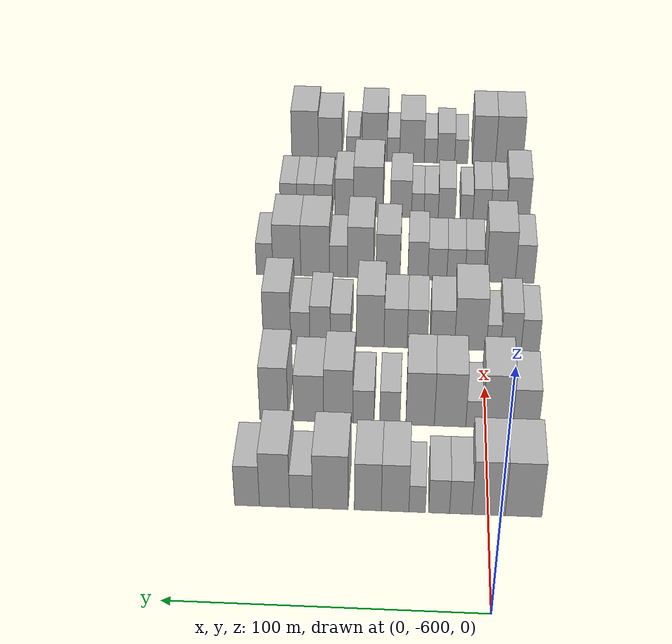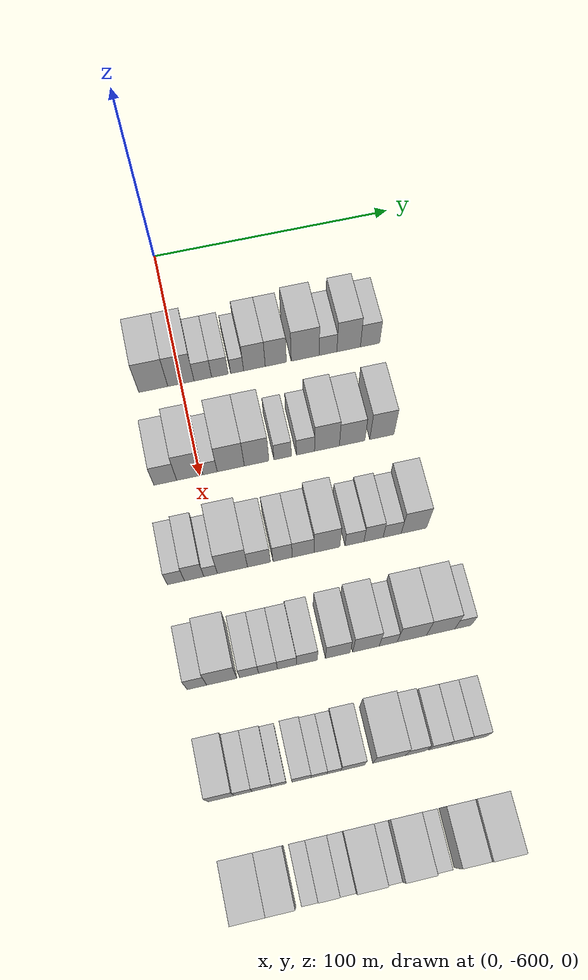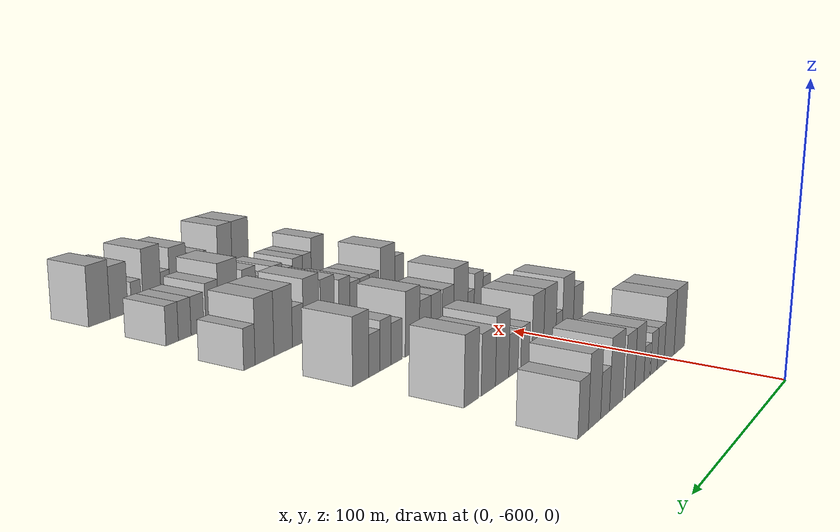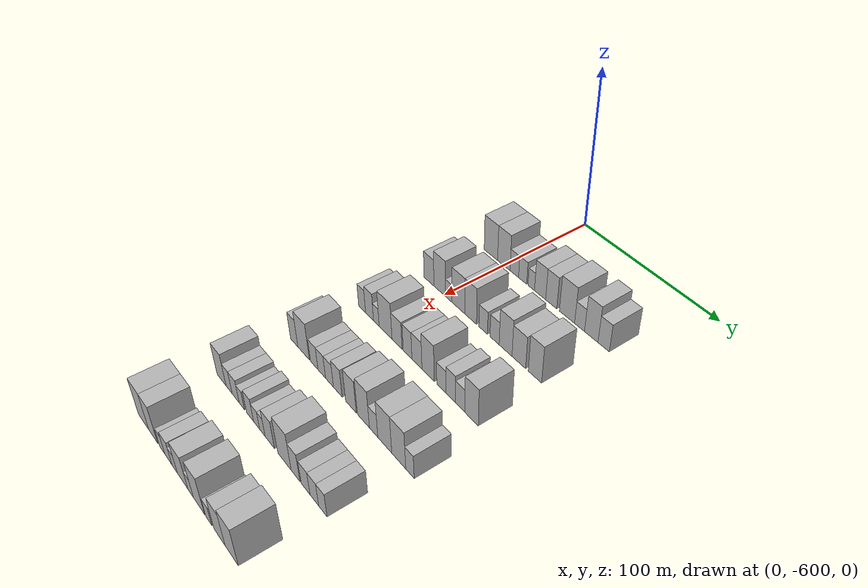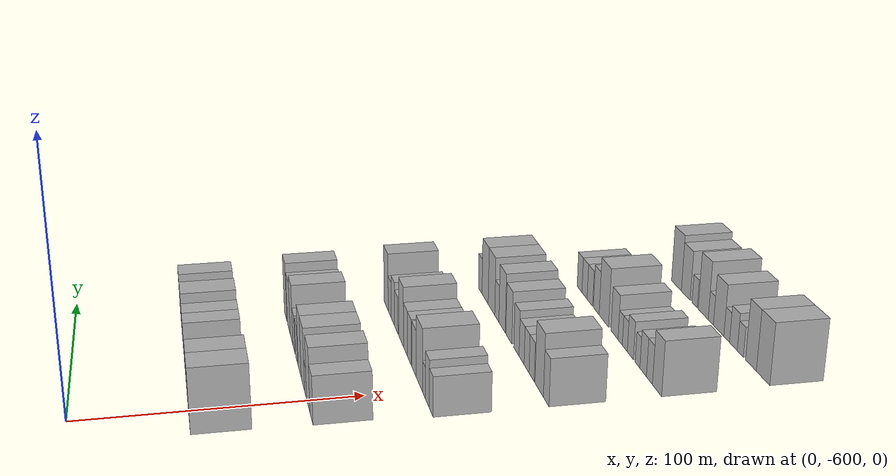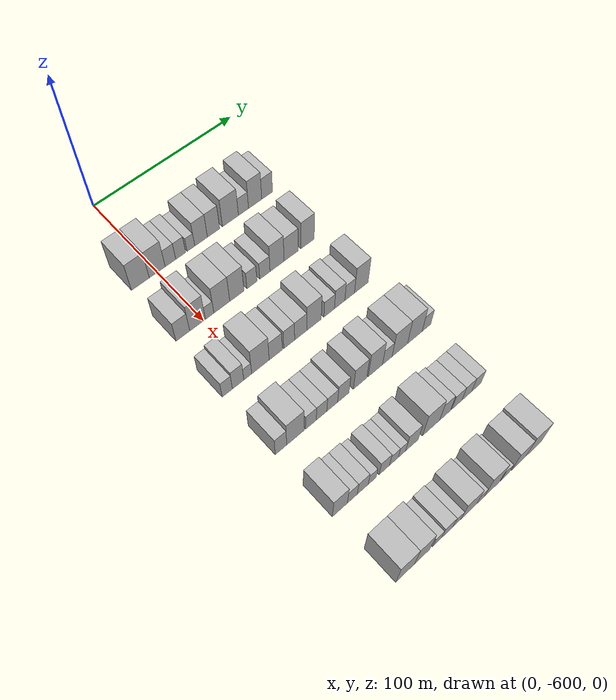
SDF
<sdf version="1.6">
 <world name="default">
  <model name="building_1">
   <static>1</static>
   <pose>50.0000 -611.1319 0 0.000000 0.000000 0.000000</pose>
   <link name="link">
    <pose>0 0 12.00 0 0 0</pose>
    <collision name="collision"><geometry><box><size>20.0000 11.7361 24.0000</size></box></geometry></collision>
    <visual name="visual">
     <cast_shadows>0</cast_shadows>
     <geometry><box><size>20.0000 11.7361 24.0000</size></box></geometry>
     <material>
      <script>
       <uri>model://HANNAS_wall/materials/scripts</uri>
       <uri>model://HANNAS_wall/materials/textures</uri>
       <name>vrc/HANNAS_wall</name>
      </script>
     </material>
    </visual>
   </link>
  </model>
  <model name="building_2">
   <static>1</static>
   <pose>50.0000 -599.9352 0 0.000000 0.000000 0.000000</pose>
   <link name="link">
    <pose>0 0 12.00 0 0 0</pose>
    <collision name="collision"><geometry><box><size>20.0000 10.6574 24.0000</size></box></geometry></collision>
    <visual name="visual">
     <cast_shadows>0</cast_shadows>
     <geometry><box><size>20.0000 10.6574 24.0000</size></box></geometry>
     <material>
      <script>
       <uri>model://HANNAS_wall/materials/scripts</uri>
       <uri>model://HANNAS_wall/materials/textures</uri>
       <name>vrc/HANNAS_wall</name>
      </script>
     </material>
    </visual>
   </link>
  </model>
  <model name="building_3">
   <static>1</static>
   <pose>50.0000 -591.0294 0 0.000000 0.000000 0.000000</pose>
   <link name="link">
    <pose>0 0 7.50 0 0 0</pose>
    <collision name="collision"><geometry><box><size>20.0000 7.1543 15.0000</size></box></geometry></collision>
    <visual name="visual">
     <cast_shadows>0</cast_shadows>
     <geometry><box><size>20.0000 7.1543 15.0000</size></box></geometry>
     <material>
      <script>
       <uri>model://HANNAS_wall/materials/scripts</uri>
       <uri>model://HANNAS_wall/materials/textures</uri>
       <name>vrc/HANNAS_wall</name>
      </script>
     </material>
    </visual>
   </link>
  </model>
  <model name="building_4">
   <static>1</static>
   <pose>50.0000 -584.0759 0 0.000000 0.000000 0.000000</pose>
   <link name="link">
    <pose>0 0 7.50 0 0 0</pose>
    <collision name="collision"><geometry><box><size>20.0000 6.7527 15.0000</size></box></geometry></collision>
    <visual name="visual">
     <cast_shadows>0</cast_shadows>
     <geometry><box><size>20.0000 6.7527 15.0000</size></box></geometry>
     <material>
      <script>
       <uri>model://HANNAS_wall/materials/scripts</uri>
       <uri>model://HANNAS_wall/materials/textures</uri>
       <name>vrc/HANNAS_wall</name>
      </script>
     </material>
    </visual>
   </link>
  </model>
  <model name="building_5">
   <static>1</static>
   <pose>50.0000 -577.0518 0 0.000000 0.000000 0.000000</pose>
   <link name="link">
    <pose>0 0 6.00 0 0 0</pose>
    <collision name="collision"><geometry><box><size>20.0000 5.2955 12.0000</size></box></geometry></collision>
    <visual name="visual">
     <cast_shadows>0</cast_shadows>
     <geometry><box><size>20.0000 5.2955 12.0000</size></box></geometry>
     <material>
      <script>
       <uri>model://HANNAS_wall/materials/scripts</uri>
       <uri>model://HANNAS_wall/materials/textures</uri>
       <name>vrc/HANNAS_wall</name>
      </script>
     </material>
    </visual>
   </link>
  </model>
  <model name="building_6">
   <static>1</static>
   <pose>50.0000 -569.9633 0 0.000000 0.000000 0.000000</pose>
   <link name="link">
    <pose>0 0 10.50 0 0 0</pose>
    <collision name="collision"><geometry><box><size>20.0000 8.8815 21.0000</size></box></geometry></collision>
    <visual name="visual">
     <cast_shadows>0</cast_shadows>
     <geometry><box><size>20.0000 8.8815 21.0000</size></box></geometry>
     <material>
      <script>
       <uri>model://HANNAS_wall/materials/scripts</uri>
       <uri>model://HANNAS_wall/materials/textures</uri>
       <name>vrc/HANNAS_wall</name>
      </script>
     </material>
    </visual>
   </link>
  </model>
  <model name="building_7">
   <static>1</static>
   <pose>50.0000 -561.1808 0 0.000000 0.000000 0.000000</pose>
   <link name="link">
    <pose>0 0 10.50 0 0 0</pose>
    <collision name="collision"><geometry><box><size>20.0000 8.6836 21.0000</size></box></geometry></collision>
    <visual name="visual">
     <cast_shadows>0</cast_shadows>
     <geometry><box><size>20.0000 8.6836 21.0000</size></box></geometry>
     <material>
      <script>
       <uri>model://HANNAS_wall/materials/scripts</uri>
       <uri>model://HANNAS_wall/materials/textures</uri>
       <name>vrc/HANNAS_wall</name>
      </script>
     </material>
    </visual>
   </link>
  </model>
  <model name="building_8">
   <static>1</static>
   <pose>50.0000 -549.0889 0 0.000000 0.000000 0.000000</pose>
   <link name="link">
    <pose>0 0 12.00 0 0 0</pose>
    <collision name="collision"><geometry><box><size>20.0000 11.5004 24.0000</size></box></geometry></collision>
    <visual name="visual">
     <cast_shadows>0</cast_shadows>
     <geometry><box><size>20.0000 11.5004 24.0000</size></box></geometry>
     <material>
      <script>
       <uri>model://HANNAS_wall/materials/scripts</uri>
       <uri>model://HANNAS_wall/materials/textures</uri>
       <name>vrc/HANNAS_wall</name>
      </script>
     </material>
    </visual>
   </link>
  </model>
  <model name="building_9">
   <static>1</static>
   <pose>50.0000 -539.6591 0 0.000000 0.000000 0.000000</pose>
   <link name="link">
    <pose>0 0 7.50 0 0 0</pose>
    <collision name="collision"><geometry><box><size>20.0000 7.3591 15.0000</size></box></geometry></collision>
    <visual name="visual">
     <cast_shadows>0</cast_shadows>
     <geometry><box><size>20.0000 7.3591 15.0000</size></box></geometry>
     <material>
      <script>
       <uri>model://HANNAS_wall/materials/scripts</uri>
       <uri>model://HANNAS_wall/materials/textures</uri>
       <name>vrc/HANNAS_wall</name>
      </script>
     </material>
    </visual>
   </link>
  </model>
  <model name="building_10">
   <static>1</static>
   <pose>50.0000 -531.0954 0 0.000000 0.000000 0.000000</pose>
   <link name="link">
    <pose>0 0 12.00 0 0 0</pose>
    <collision name="collision"><geometry><box><size>20.0000 9.7683 24.0000</size></box></geometry></collision>
    <visual name="visual">
     <cast_shadows>0</cast_shadows>
     <geometry><box><size>20.0000 9.7683 24.0000</size></box></geometry>
     <material>
      <script>
       <uri>model://HANNAS_wall/materials/scripts</uri>
       <uri>model://HANNAS_wall/materials/textures</uri>
       <name>vrc/HANNAS_wall</name>
      </script>
     </material>
    </visual>
   </link>
  </model>
  <model name="building_11">
   <static>1</static>
   <pose>50.0000 -522.1964 0 0.000000 0.000000 0.000000</pose>
   <link name="link">
    <pose>0 0 9.00 0 0 0</pose>
    <collision name="collision"><geometry><box><size>20.0000 8.0297 18.0000</size></box></geometry></collision>
    <visual name="visual">
     <cast_shadows>0</cast_shadows>
     <geometry><box><size>20.0000 8.0297 18.0000</size></box></geometry>
     <material>
      <script>
       <uri>model://HANNAS_wall/materials/scripts</uri>
       <uri>model://HANNAS_wall/materials/textures</uri>
       <name>vrc/HANNAS_wall</name>
      </script>
     </material>
    </visual>
   </link>
  </model>
  <model name="building_139">
   <static>1</static>
   <pose>90.0000 -613.5247 0 0.000000 0.000000 0.000000</pose>
   <link name="link">
    <pose>0 0 9.00 0 0 0</pose>
    <collision name="collision"><geometry><box><size>20.0000 8.9505 18.0000</size></box></geometry></collision>
    <visual name="visual">
     <cast_shadows>0</cast_shadows>
     <geometry><box><size>20.0000 8.9505 18.0000</size></box></geometry>
     <material>
      <script>
       <uri>model://HANNAS_wall/materials/scripts</uri>
       <uri>model://HANNAS_wall/materials/textures</uri>
       <name>vrc/HANNAS_wall</name>
      </script>
     </material>
    </visual>
   </link>
  </model>
  <model name="building_140">
   <static>1</static>
   <pose>90.0000 -603.8955 0 0.000000 0.000000 0.000000</pose>
   <link name="link">
    <pose>0 0 12.00 0 0 0</pose>
    <collision name="collision"><geometry><box><size>20.0000 10.3079 24.0000</size></box></geometry></collision>
    <visual name="visual">
     <cast_shadows>0</cast_shadows>
     <geometry><box><size>20.0000 10.3079 24.0000</size></box></geometry>
     <material>
      <script>
       <uri>model://HANNAS_wall/materials/scripts</uri>
       <uri>model://HANNAS_wall/materials/textures</uri>
       <name>vrc/HANNAS_wall</name>
      </script>
     </material>
    </visual>
   </link>
  </model>
  <model name="building_141">
   <static>1</static>
   <pose>90.0000 -595.9111 0 0.000000 0.000000 0.000000</pose>
   <link name="link">
    <pose>0 0 6.00 0 0 0</pose>
    <collision name="collision"><geometry><box><size>20.0000 5.6610 12.0000</size></box></geometry></collision>
    <visual name="visual">
     <cast_shadows>0</cast_shadows>
     <geometry><box><size>20.0000 5.6610 12.0000</size></box></geometry>
     <material>
      <script>
       <uri>model://HANNAS_wall/materials/scripts</uri>
       <uri>model://HANNAS_wall/materials/textures</uri>
       <name>vrc/HANNAS_wall</name>
      </script>
     </material>
    </visual>
   </link>
  </model>
  <model name="building_142">
   <static>1</static>
   <pose>90.0000 -587.7141 0 0.000000 0.000000 0.000000</pose>
   <link name="link">
    <pose>0 0 12.00 0 0 0</pose>
    <collision name="collision"><geometry><box><size>20.0000 10.7329 24.0000</size></box></geometry></collision>
    <visual name="visual">
     <cast_shadows>0</cast_shadows>
     <geometry><box><size>20.0000 10.7329 24.0000</size></box></geometry>
     <material>
      <script>
       <uri>model://HANNAS_wall/materials/scripts</uri>
       <uri>model://HANNAS_wall/materials/textures</uri>
       <name>vrc/HANNAS_wall</name>
      </script>
     </material>
    </visual>
   </link>
  </model>
  <model name="building_143">
   <static>1</static>
   <pose>90.0000 -577.4683 0 0.000000 0.000000 0.000000</pose>
   <link name="link">
    <pose>0 0 12.00 0 0 0</pose>
    <collision name="collision"><geometry><box><size>20.0000 9.7588 24.0000</size></box></geometry></collision>
    <visual name="visual">
     <cast_shadows>0</cast_shadows>
     <geometry><box><size>20.0000 9.7588 24.0000</size></box></geometry>
     <material>
      <script>
       <uri>model://HANNAS_wall/materials/scripts</uri>
       <uri>model://HANNAS_wall/materials/textures</uri>
       <name>vrc/HANNAS_wall</name>
      </script>
     </material>
    </visual>
   </link>
  </model>
  <model name="building_144">
   <static>1</static>
   <pose>90.0000 -567.1206 0 0.000000 0.000000 0.000000</pose>
   <link name="link">
    <pose>0 0 7.50 0 0 0</pose>
    <collision name="collision"><geometry><box><size>20.0000 6.9365 15.0000</size></box></geometry></collision>
    <visual name="visual">
     <cast_shadows>0</cast_shadows>
     <geometry><box><size>20.0000 6.9365 15.0000</size></box></geometry>
     <material>
      <script>
       <uri>model://HANNAS_wall/materials/scripts</uri>
       <uri>model://HANNAS_wall/materials/textures</uri>
       <name>vrc/HANNAS_wall</name>
      </script>
     </material>
    </visual>
   </link>
  </model>
  <model name="building_145">
   <static>1</static>
   <pose>90.0000 -558.0326 0 0.000000 0.000000 0.000000</pose>
   <link name="link">
    <pose>0 0 7.50 0 0 0</pose>
    <collision name="collision"><geometry><box><size>20.0000 7.2395 15.0000</size></box></geometry></collision>
    <visual name="visual">
     <cast_shadows>0</cast_shadows>
     <geometry><box><size>20.0000 7.2395 15.0000</size></box></geometry>
     <material>
      <script>
       <uri>model://HANNAS_wall/materials/scripts</uri>
       <uri>model://HANNAS_wall/materials/textures</uri>
       <name>vrc/HANNAS_wall</name>
      </script>
     </material>
    </visual>
   </link>
  </model>
  <model name="building_146">
   <static>1</static>
   <pose>90.0000 -549.4258 0 0.000000 0.000000 0.000000</pose>
   <link name="link">
    <pose>0 0 12.00 0 0 0</pose>
    <collision name="collision"><geometry><box><size>20.0000 9.9741 24.0000</size></box></geometry></collision>
    <visual name="visual">
     <cast_shadows>0</cast_shadows>
     <geometry><box><size>20.0000 9.9741 24.0000</size></box></geometry>
     <material>
      <script>
       <uri>model://HANNAS_wall/materials/scripts</uri>
       <uri>model://HANNAS_wall/materials/textures</uri>
       <name>vrc/HANNAS_wall</name>
      </script>
     </material>
    </visual>
   </link>
  </model>
  <model name="building_147">
   <static>1</static>
   <pose>90.0000 -539.3136 0 0.000000 0.000000 0.000000</pose>
   <link name="link">
    <pose>0 0 10.50 0 0 0</pose>
    <collision name="collision"><geometry><box><size>20.0000 10.2503 21.0000</size></box></geometry></collision>
    <visual name="visual">
     <cast_shadows>0</cast_shadows>
     <geometry><box><size>20.0000 10.2503 21.0000</size></box></geometry>
     <material>
      <script>
       <uri>model://HANNAS_wall/materials/scripts</uri>
       <uri>model://HANNAS_wall/materials/textures</uri>
       <name>vrc/HANNAS_wall</name>
      </script>
     </material>
    </visual>
   </link>
  </model>
  <model name="building_148">
   <static>1</static>
   <pose>90.0000 -527.3125 0 0.000000 0.000000 0.000000</pose>
   <link name="link">
    <pose>0 0 12.00 0 0 0</pose>
    <collision name="collision"><geometry><box><size>20.0000 9.7519 24.0000</size></box></geometry></collision>
    <visual name="visual">
     <cast_shadows>0</cast_shadows>
     <geometry><box><size>20.0000 9.7519 24.0000</size></box></geometry>
     <material>
      <script>
       <uri>model://HANNAS_wall/materials/scripts</uri>
       <uri>model://HANNAS_wall/materials/textures</uri>
       <name>vrc/HANNAS_wall</name>
      </script>
     </material>
    </visual>
   </link>
  </model>
  <model name="building_278">
   <static>1</static>
   <pose>130.0000 -616.7407 0 0.000000 0.000000 0.000000</pose>
   <link name="link">
    <pose>0 0 7.50 0 0 0</pose>
    <collision name="collision"><geometry><box><size>20.0000 6.5186 15.0000</size></box></geometry></collision>
    <visual name="visual">
     <cast_shadows>0</cast_shadows>
     <geometry><box><size>20.0000 6.5186 15.0000</size></box></geometry>
     <material>
      <script>
       <uri>model://HANNAS_wall/materials/scripts</uri>
       <uri>model://HANNAS_wall/materials/textures</uri>
       <name>vrc/HANNAS_wall</name>
      </script>
     </material>
    </visual>
   </link>
  </model>
  <model name="building_279">
   <static>1</static>
   <pose>130.0000 -609.7921 0 0.000000 0.000000 0.000000</pose>
   <link name="link">
    <pose>0 0 9.00 0 0 0</pose>
    <collision name="collision"><geometry><box><size>20.0000 7.3785 18.0000</size></box></geometry></collision>
    <visual name="visual">
     <cast_shadows>0</cast_shadows>
     <geometry><box><size>20.0000 7.3785 18.0000</size></box></geometry>
     <material>
      <script>
       <uri>model://HANNAS_wall/materials/scripts</uri>
       <uri>model://HANNAS_wall/materials/textures</uri>
       <name>vrc/HANNAS_wall</name>
      </script>
     </material>
    </visual>
   </link>
  </model>
  <model name="building_280">
   <static>1</static>
   <pose>130.0000 -603.5214 0 0.000000 0.000000 0.000000</pose>
   <link name="link">
    <pose>0 0 6.00 0 0 0</pose>
    <collision name="collision"><geometry><box><size>20.0000 5.1628 12.0000</size></box></geometry></collision>
    <visual name="visual">
     <cast_shadows>0</cast_shadows>
     <geometry><box><size>20.0000 5.1628 12.0000</size></box></geometry>
     <material>
      <script>
       <uri>model://HANNAS_wall/materials/scripts</uri>
       <uri>model://HANNAS_wall/materials/textures</uri>
       <name>vrc/HANNAS_wall</name>
      </script>
     </material>
    </visual>
   </link>
  </model>
  <model name="building_281">
   <static>1</static>
   <pose>130.0000 -595.1748 0 0.000000 0.000000 0.000000</pose>
   <link name="link">
    <pose>0 0 12.00 0 0 0</pose>
    <collision name="collision"><geometry><box><size>20.0000 11.5303 24.0000</size></box></geometry></collision>
    <visual name="visual">
     <cast_shadows>0</cast_shadows>
     <geometry><box><size>20.0000 11.5303 24.0000</size></box></geometry>
     <material>
      <script>
       <uri>model://HANNAS_wall/materials/scripts</uri>
       <uri>model://HANNAS_wall/materials/textures</uri>
       <name>vrc/HANNAS_wall</name>
      </script>
     </material>
    </visual>
   </link>
  </model>
  <model name="building_282">
   <static>1</static>
   <pose>130.0000 -585.0062 0 0.000000 0.000000 0.000000</pose>
   <link name="link">
    <pose>0 0 9.00 0 0 0</pose>
    <collision name="collision"><geometry><box><size>20.0000 8.8069 18.0000</size></box></geometry></collision>
    <visual name="visual">
     <cast_shadows>0</cast_shadows>
     <geometry><box><size>20.0000 8.8069 18.0000</size></box></geometry>
     <material>
      <script>
       <uri>model://HANNAS_wall/materials/scripts</uri>
       <uri>model://HANNAS_wall/materials/textures</uri>
       <name>vrc/HANNAS_wall</name>
      </script>
     </material>
    </visual>
   </link>
  </model>
  <model name="building_283">
   <static>1</static>
   <pose>130.0000 -575.9090 0 0.000000 0.000000 0.000000</pose>
   <link name="link">
    <pose>0 0 9.00 0 0 0</pose>
    <collision name="collision"><geometry><box><size>20.0000 7.3875 18.0000</size></box></geometry></collision>
    <visual name="visual">
     <cast_shadows>0</cast_shadows>
     <geometry><box><size>20.0000 7.3875 18.0000</size></box></geometry>
     <material>
      <script>
       <uri>model://HANNAS_wall/materials/scripts</uri>
       <uri>model://HANNAS_wall/materials/textures</uri>
       <name>vrc/HANNAS_wall</name>
      </script>
     </material>
    </visual>
   </link>
  </model>
  <model name="building_284">
   <static>1</static>
   <pose>130.0000 -568.0191 0 0.000000 0.000000 0.000000</pose>
   <link name="link">
    <pose>0 0 9.00 0 0 0</pose>
    <collision name="collision"><geometry><box><size>20.0000 8.3922 18.0000</size></box></geometry></collision>
    <visual name="visual">
     <cast_shadows>0</cast_shadows>
     <geometry><box><size>20.0000 8.3922 18.0000</size></box></geometry>
     <material>
      <script>
       <uri>model://HANNAS_wall/materials/scripts</uri>
       <uri>model://HANNAS_wall/materials/textures</uri>
       <name>vrc/HANNAS_wall</name>
      </script>
     </material>
    </visual>
   </link>
  </model>
  <model name="building_285">
   <static>1</static>
   <pose>130.0000 -558.7996 0 0.000000 0.000000 0.000000</pose>
   <link name="link">
    <pose>0 0 12.00 0 0 0</pose>
    <collision name="collision"><geometry><box><size>20.0000 10.0468 24.0000</size></box></geometry></collision>
    <visual name="visual">
     <cast_shadows>0</cast_shadows>
     <geometry><box><size>20.0000 10.0468 24.0000</size></box></geometry>
     <material>
      <script>
       <uri>model://HANNAS_wall/materials/scripts</uri>
       <uri>model://HANNAS_wall/materials/textures</uri>
       <name>vrc/HANNAS_wall</name>
      </script>
     </material>
    </visual>
   </link>
  </model>
  <model name="building_286">
   <static>1</static>
   <pose>130.0000 -548.0516 0 0.000000 0.000000 0.000000</pose>
   <link name="link">
    <pose>0 0 7.50 0 0 0</pose>
    <collision name="collision"><geometry><box><size>20.0000 7.4492 15.0000</size></box></geometry></collision>
    <visual name="visual">
     <cast_shadows>0</cast_shadows>
     <geometry><box><size>20.0000 7.4492 15.0000</size></box></geometry>
     <material>
      <script>
       <uri>model://HANNAS_wall/materials/scripts</uri>
       <uri>model://HANNAS_wall/materials/textures</uri>
       <name>vrc/HANNAS_wall</name>
      </script>
     </material>
    </visual>
   </link>
  </model>
  <model name="building_287">
   <static>1</static>
   <pose>130.0000 -540.6058 0 0.000000 0.000000 0.000000</pose>
   <link name="link">
    <pose>0 0 9.00 0 0 0</pose>
    <collision name="collision"><geometry><box><size>20.0000 7.4425 18.0000</size></box></geometry></collision>
    <visual name="visual">
     <cast_shadows>0</cast_shadows>
     <geometry><box><size>20.0000 7.4425 18.0000</size></box></geometry>
     <material>
      <script>
       <uri>model://HANNAS_wall/materials/scripts</uri>
       <uri>model://HANNAS_wall/materials/textures</uri>
       <name>vrc/HANNAS_wall</name>
      </script>
     </material>
    </visual>
   </link>
  </model>
  <model name="building_288">
   <static>1</static>
   <pose>130.0000 -533.3597 0 0.000000 0.000000 0.000000</pose>
   <link name="link">
    <pose>0 0 7.50 0 0 0</pose>
    <collision name="collision"><geometry><box><size>20.0000 7.0497 15.0000</size></box></geometry></collision>
    <visual name="visual">
     <cast_shadows>0</cast_shadows>
     <geometry><box><size>20.0000 7.0497 15.0000</size></box></geometry>
     <material>
      <script>
       <uri>model://HANNAS_wall/materials/scripts</uri>
       <uri>model://HANNAS_wall/materials/textures</uri>
       <name>vrc/HANNAS_wall</name>
      </script>
     </material>
    </visual>
   </link>
  </model>
  <model name="building_289">
   <static>1</static>
   <pose>130.0000 -524.8486 0 0.000000 0.000000 0.000000</pose>
   <link name="link">
    <pose>0 0 12.00 0 0 0</pose>
    <collision name="collision"><geometry><box><size>20.0000 9.9726 24.0000</size></box></geometry></collision>
    <visual name="visual">
     <cast_shadows>0</cast_shadows>
     <geometry><box><size>20.0000 9.9726 24.0000</size></box></geometry>
     <material>
      <script>
       <uri>model://HANNAS_wall/materials/scripts</uri>
       <uri>model://HANNAS_wall/materials/textures</uri>
       <name>vrc/HANNAS_wall</name>
      </script>
     </material>
    </visual>
   </link>
  </model>
  <model name="building_417">
   <static>1</static>
   <pose>170.0000 -616.3942 0 0.000000 0.000000 0.000000</pose>
   <link name="link">
    <pose>0 0 9.00 0 0 0</pose>
    <collision name="collision"><geometry><box><size>20.0000 7.2116 18.0000</size></box></geometry></collision>
    <visual name="visual">
     <cast_shadows>0</cast_shadows>
     <geometry><box><size>20.0000 7.2116 18.0000</size></box></geometry>
     <material>
      <script>
       <uri>model://HANNAS_wall/materials/scripts</uri>
       <uri>model://HANNAS_wall/materials/textures</uri>
       <name>vrc/HANNAS_wall</name>
      </script>
     </material>
    </visual>
   </link>
  </model>
  <model name="building_418">
   <static>1</static>
   <pose>170.0000 -607.2190 0 0.000000 0.000000 0.000000</pose>
   <link name="link">
    <pose>0 0 12.00 0 0 0</pose>
    <collision name="collision"><geometry><box><size>20.0000 11.1388 24.0000</size></box></geometry></collision>
    <visual name="visual">
     <cast_shadows>0</cast_shadows>
     <geometry><box><size>20.0000 11.1388 24.0000</size></box></geometry>
     <material>
      <script>
       <uri>model://HANNAS_wall/materials/scripts</uri>
       <uri>model://HANNAS_wall/materials/textures</uri>
       <name>vrc/HANNAS_wall</name>
      </script>
     </material>
    </visual>
   </link>
  </model>
  <model name="building_419">
   <static>1</static>
   <pose>170.0000 -597.1229 0 0.000000 0.000000 0.000000</pose>
   <link name="link">
    <pose>0 0 7.50 0 0 0</pose>
    <collision name="collision"><geometry><box><size>20.0000 7.0534 15.0000</size></box></geometry></collision>
    <visual name="visual">
     <cast_shadows>0</cast_shadows>
     <geometry><box><size>20.0000 7.0534 15.0000</size></box></geometry>
     <material>
      <script>
       <uri>model://HANNAS_wall/materials/scripts</uri>
       <uri>model://HANNAS_wall/materials/textures</uri>
       <name>vrc/HANNAS_wall</name>
      </script>
     </material>
    </visual>
   </link>
  </model>
  <model name="building_420">
   <static>1</static>
   <pose>170.0000 -590.1105 0 0.000000 0.000000 0.000000</pose>
   <link name="link">
    <pose>0 0 7.50 0 0 0</pose>
    <collision name="collision"><geometry><box><size>20.0000 6.9714 15.0000</size></box></geometry></collision>
    <visual name="visual">
     <cast_shadows>0</cast_shadows>
     <geometry><box><size>20.0000 6.9714 15.0000</size></box></geometry>
     <material>
      <script>
       <uri>model://HANNAS_wall/materials/scripts</uri>
       <uri>model://HANNAS_wall/materials/textures</uri>
       <name>vrc/HANNAS_wall</name>
      </script>
     </material>
    </visual>
   </link>
  </model>
  <model name="building_421">
   <static>1</static>
   <pose>170.0000 -583.0115 0 0.000000 0.000000 0.000000</pose>
   <link name="link">
    <pose>0 0 7.50 0 0 0</pose>
    <collision name="collision"><geometry><box><size>20.0000 7.2267 15.0000</size></box></geometry></collision>
    <visual name="visual">
     <cast_shadows>0</cast_shadows>
     <geometry><box><size>20.0000 7.2267 15.0000</size></box></geometry>
     <material>
      <script>
       <uri>model://HANNAS_wall/materials/scripts</uri>
       <uri>model://HANNAS_wall/materials/textures</uri>
       <name>vrc/HANNAS_wall</name>
      </script>
     </material>
    </visual>
   </link>
  </model>
  <model name="building_422">
   <static>1</static>
   <pose>170.0000 -575.5443 0 0.000000 0.000000 0.000000</pose>
   <link name="link">
    <pose>0 0 9.00 0 0 0</pose>
    <collision name="collision"><geometry><box><size>20.0000 7.7076 18.0000</size></box></geometry></collision>
    <visual name="visual">
     <cast_shadows>0</cast_shadows>
     <geometry><box><size>20.0000 7.7076 18.0000</size></box></geometry>
     <material>
      <script>
       <uri>model://HANNAS_wall/materials/scripts</uri>
       <uri>model://HANNAS_wall/materials/textures</uri>
       <name>vrc/HANNAS_wall</name>
      </script>
     </material>
    </visual>
   </link>
  </model>
  <model name="building_423">
   <static>1</static>
   <pose>170.0000 -564.0742 0 0.000000 0.000000 0.000000</pose>
   <link name="link">
    <pose>0 0 10.50 0 0 0</pose>
    <collision name="collision"><geometry><box><size>20.0000 9.2326 21.0000</size></box></geometry></collision>
    <visual name="visual">
     <cast_shadows>0</cast_shadows>
     <geometry><box><size>20.0000 9.2326 21.0000</size></box></geometry>
     <material>
      <script>
       <uri>model://HANNAS_wall/materials/scripts</uri>
       <uri>model://HANNAS_wall/materials/textures</uri>
       <name>vrc/HANNAS_wall</name>
      </script>
     </material>
    </visual>
   </link>
  </model>
  <model name="building_424">
   <static>1</static>
   <pose>170.0000 -553.4575 0 0.000000 0.000000 0.000000</pose>
   <link name="link">
    <pose>0 0 12.00 0 0 0</pose>
    <collision name="collision"><geometry><box><size>20.0000 10.0009 24.0000</size></box></geometry></collision>
    <visual name="visual">
     <cast_shadows>0</cast_shadows>
     <geometry><box><size>20.0000 10.0009 24.0000</size></box></geometry>
     <material>
      <script>
       <uri>model://HANNAS_wall/materials/scripts</uri>
       <uri>model://HANNAS_wall/materials/textures</uri>
       <name>vrc/HANNAS_wall</name>
      </script>
     </material>
    </visual>
   </link>
  </model>
  <model name="building_425">
   <static>1</static>
   <pose>170.0000 -545.0461 0 0.000000 0.000000 0.000000</pose>
   <link name="link">
    <pose>0 0 7.50 0 0 0</pose>
    <collision name="collision"><geometry><box><size>20.0000 6.8217 15.0000</size></box></geometry></collision>
    <visual name="visual">
     <cast_shadows>0</cast_shadows>
     <geometry><box><size>20.0000 6.8217 15.0000</size></box></geometry>
     <material>
      <script>
       <uri>model://HANNAS_wall/materials/scripts</uri>
       <uri>model://HANNAS_wall/materials/textures</uri>
       <name>vrc/HANNAS_wall</name>
      </script>
     </material>
    </visual>
   </link>
  </model>
  <model name="building_426">
   <static>1</static>
   <pose>170.0000 -536.0790 0 0.000000 0.000000 0.000000</pose>
   <link name="link">
    <pose>0 0 12.00 0 0 0</pose>
    <collision name="collision"><geometry><box><size>20.0000 11.1124 24.0000</size></box></geometry></collision>
    <visual name="visual">
     <cast_shadows>0</cast_shadows>
     <geometry><box><size>20.0000 11.1124 24.0000</size></box></geometry>
     <material>
      <script>
       <uri>model://HANNAS_wall/materials/scripts</uri>
       <uri>model://HANNAS_wall/materials/textures</uri>
       <name>vrc/HANNAS_wall</name>
      </script>
     </material>
    </visual>
   </link>
  </model>
  <model name="building_427">
   <static>1</static>
   <pose>170.0000 -525.1306 0 0.000000 0.000000 0.000000</pose>
   <link name="link">
    <pose>0 0 12.00 0 0 0</pose>
    <collision name="collision"><geometry><box><size>20.0000 10.7845 24.0000</size></box></geometry></collision>
    <visual name="visual">
     <cast_shadows>0</cast_shadows>
     <geometry><box><size>20.0000 10.7845 24.0000</size></box></geometry>
     <material>
      <script>
       <uri>model://HANNAS_wall/materials/scripts</uri>
       <uri>model://HANNAS_wall/materials/textures</uri>
       <name>vrc/HANNAS_wall</name>
      </script>
     </material>
    </visual>
   </link>
  </model>
  <model name="building_428">
   <static>1</static>
   <pose>170.0000 -516.5544 0 0.000000 0.000000 0.000000</pose>
   <link name="link">
    <pose>0 0 7.50 0 0 0</pose>
    <collision name="collision"><geometry><box><size>20.0000 6.3679 15.0000</size></box></geometry></collision>
    <visual name="visual">
     <cast_shadows>0</cast_shadows>
     <geometry><box><size>20.0000 6.3679 15.0000</size></box></geometry>
     <material>
      <script>
       <uri>model://HANNAS_wall/materials/scripts</uri>
       <uri>model://HANNAS_wall/materials/textures</uri>
       <name>vrc/HANNAS_wall</name>
      </script>
     </material>
    </visual>
   </link>
  </model>
  <model name="building_545">
   <static>1</static>
   <pose>210.0000 -615.3197 0 0.000000 0.000000 0.000000</pose>
   <link name="link">
    <pose>0 0 10.50 0 0 0</pose>
    <collision name="collision"><geometry><box><size>20.0000 9.3607 21.0000</size></box></geometry></collision>
    <visual name="visual">
     <cast_shadows>0</cast_shadows>
     <geometry><box><size>20.0000 9.3607 21.0000</size></box></geometry>
     <material>
      <script>
       <uri>model://HANNAS_wall/materials/scripts</uri>
       <uri>model://HANNAS_wall/materials/textures</uri>
       <name>vrc/HANNAS_wall</name>
      </script>
     </material>
    </visual>
   </link>
  </model>
  <model name="building_546">
   <static>1</static>
   <pose>210.0000 -607.4864 0 0.000000 0.000000 0.000000</pose>
   <link name="link">
    <pose>0 0 7.50 0 0 0</pose>
    <collision name="collision"><geometry><box><size>20.0000 6.3058 15.0000</size></box></geometry></collision>
    <visual name="visual">
     <cast_shadows>0</cast_shadows>
     <geometry><box><size>20.0000 6.3058 15.0000</size></box></geometry>
     <material>
      <script>
       <uri>model://HANNAS_wall/materials/scripts</uri>
       <uri>model://HANNAS_wall/materials/textures</uri>
       <name>vrc/HANNAS_wall</name>
      </script>
     </material>
    </visual>
   </link>
  </model>
  <model name="building_547">
   <static>1</static>
   <pose>210.0000 -600.7893 0 0.000000 0.000000 0.000000</pose>
   <link name="link">
    <pose>0 0 7.50 0 0 0</pose>
    <collision name="collision"><geometry><box><size>20.0000 7.0884 15.0000</size></box></geometry></collision>
    <visual name="visual">
     <cast_shadows>0</cast_shadows>
     <geometry><box><size>20.0000 7.0884 15.0000</size></box></geometry>
     <material>
      <script>
       <uri>model://HANNAS_wall/materials/scripts</uri>
       <uri>model://HANNAS_wall/materials/textures</uri>
       <name>vrc/HANNAS_wall</name>
      </script>
     </material>
    </visual>
   </link>
  </model>
  <model name="building_548">
   <static>1</static>
   <pose>210.0000 -594.6594 0 0.000000 0.000000 0.000000</pose>
   <link name="link">
    <pose>0 0 6.00 0 0 0</pose>
    <collision name="collision"><geometry><box><size>20.0000 5.1715 12.0000</size></box></geometry></collision>
    <visual name="visual">
     <cast_shadows>0</cast_shadows>
     <geometry><box><size>20.0000 5.1715 12.0000</size></box></geometry>
     <material>
      <script>
       <uri>model://HANNAS_wall/materials/scripts</uri>
       <uri>model://HANNAS_wall/materials/textures</uri>
       <name>vrc/HANNAS_wall</name>
      </script>
     </material>
    </visual>
   </link>
  </model>
  <model name="building_549">
   <static>1</static>
   <pose>210.0000 -586.6365 0 0.000000 0.000000 0.000000</pose>
   <link name="link">
    <pose>0 0 7.50 0 0 0</pose>
    <collision name="collision"><geometry><box><size>20.0000 6.8744 15.0000</size></box></geometry></collision>
    <visual name="visual">
     <cast_shadows>0</cast_shadows>
     <geometry><box><size>20.0000 6.8744 15.0000</size></box></geometry>
     <material>
      <script>
       <uri>model://HANNAS_wall/materials/scripts</uri>
       <uri>model://HANNAS_wall/materials/textures</uri>
       <name>vrc/HANNAS_wall</name>
      </script>
     </material>
    </visual>
   </link>
  </model>
  <model name="building_550">
   <static>1</static>
   <pose>210.0000 -580.3046 0 0.000000 0.000000 0.000000</pose>
   <link name="link">
    <pose>0 0 6.00 0 0 0</pose>
    <collision name="collision"><geometry><box><size>20.0000 5.7894 12.0000</size></box></geometry></collision>
    <visual name="visual">
     <cast_shadows>0</cast_shadows>
     <geometry><box><size>20.0000 5.7894 12.0000</size></box></geometry>
     <material>
      <script>
       <uri>model://HANNAS_wall/materials/scripts</uri>
       <uri>model://HANNAS_wall/materials/textures</uri>
       <name>vrc/HANNAS_wall</name>
      </script>
     </material>
    </visual>
   </link>
  </model>
  <model name="building_551">
   <static>1</static>
   <pose>210.0000 -574.8932 0 0.000000 0.000000 0.000000</pose>
   <link name="link">
    <pose>0 0 6.00 0 0 0</pose>
    <collision name="collision"><geometry><box><size>20.0000 5.0333 12.0000</size></box></geometry></collision>
    <visual name="visual">
     <cast_shadows>0</cast_shadows>
     <geometry><box><size>20.0000 5.0333 12.0000</size></box></geometry>
     <material>
      <script>
       <uri>model://HANNAS_wall/materials/scripts</uri>
       <uri>model://HANNAS_wall/materials/textures</uri>
       <name>vrc/HANNAS_wall</name>
      </script>
     </material>
    </visual>
   </link>
  </model>
  <model name="building_552">
   <static>1</static>
   <pose>210.0000 -568.0820 0 0.000000 0.000000 0.000000</pose>
   <link name="link">
    <pose>0 0 9.00 0 0 0</pose>
    <collision name="collision"><geometry><box><size>20.0000 8.5890 18.0000</size></box></geometry></collision>
    <visual name="visual">
     <cast_shadows>0</cast_shadows>
     <geometry><box><size>20.0000 8.5890 18.0000</size></box></geometry>
     <material>
      <script>
       <uri>model://HANNAS_wall/materials/scripts</uri>
       <uri>model://HANNAS_wall/materials/textures</uri>
       <name>vrc/HANNAS_wall</name>
      </script>
     </material>
    </visual>
   </link>
  </model>
  <model name="building_553">
   <static>1</static>
   <pose>210.0000 -554.8618 0 0.000000 0.000000 0.000000</pose>
   <link name="link">
    <pose>0 0 12.00 0 0 0</pose>
    <collision name="collision"><geometry><box><size>20.0000 11.8514 24.0000</size></box></geometry></collision>
    <visual name="visual">
     <cast_shadows>0</cast_shadows>
     <geometry><box><size>20.0000 11.8514 24.0000</size></box></geometry>
     <material>
      <script>
       <uri>model://HANNAS_wall/materials/scripts</uri>
       <uri>model://HANNAS_wall/materials/textures</uri>
       <name>vrc/HANNAS_wall</name>
      </script>
     </material>
    </visual>
   </link>
  </model>
  <model name="building_554">
   <static>1</static>
   <pose>210.0000 -545.1506 0 0.000000 0.000000 0.000000</pose>
   <link name="link">
    <pose>0 0 9.00 0 0 0</pose>
    <collision name="collision"><geometry><box><size>20.0000 7.5711 18.0000</size></box></geometry></collision>
    <visual name="visual">
     <cast_shadows>0</cast_shadows>
     <geometry><box><size>20.0000 7.5711 18.0000</size></box></geometry>
     <material>
      <script>
       <uri>model://HANNAS_wall/materials/scripts</uri>
       <uri>model://HANNAS_wall/materials/textures</uri>
       <name>vrc/HANNAS_wall</name>
      </script>
     </material>
    </visual>
   </link>
  </model>
  <model name="building_555">
   <static>1</static>
   <pose>210.0000 -536.6792 0 0.000000 0.000000 0.000000</pose>
   <link name="link">
    <pose>0 0 7.50 0 0 0</pose>
    <collision name="collision"><geometry><box><size>20.0000 7.3716 15.0000</size></box></geometry></collision>
    <visual name="visual">
     <cast_shadows>0</cast_shadows>
     <geometry><box><size>20.0000 7.3716 15.0000</size></box></geometry>
     <material>
      <script>
       <uri>model://HANNAS_wall/materials/scripts</uri>
       <uri>model://HANNAS_wall/materials/textures</uri>
       <name>vrc/HANNAS_wall</name>
      </script>
     </material>
    </visual>
   </link>
  </model>
  <model name="building_556">
   <static>1</static>
   <pose>210.0000 -529.4489 0 0.000000 0.000000 0.000000</pose>
   <link name="link">
    <pose>0 0 7.50 0 0 0</pose>
    <collision name="collision"><geometry><box><size>20.0000 7.0889 15.0000</size></box></geometry></collision>
    <visual name="visual">
     <cast_shadows>0</cast_shadows>
     <geometry><box><size>20.0000 7.0889 15.0000</size></box></geometry>
     <material>
      <script>
       <uri>model://HANNAS_wall/materials/scripts</uri>
       <uri>model://HANNAS_wall/materials/textures</uri>
       <name>vrc/HANNAS_wall</name>
      </script>
     </material>
    </visual>
   </link>
  </model>
  <model name="building_557">
   <static>1</static>
   <pose>210.0000 -522.5334 0 0.000000 0.000000 0.000000</pose>
   <link name="link">
    <pose>0 0 7.50 0 0 0</pose>
    <collision name="collision"><geometry><box><size>20.0000 6.7420 15.0000</size></box></geometry></collision>
    <visual name="visual">
     <cast_shadows>0</cast_shadows>
     <geometry><box><size>20.0000 6.7420 15.0000</size></box></geometry>
     <material>
      <script>
       <uri>model://HANNAS_wall/materials/scripts</uri>
       <uri>model://HANNAS_wall/materials/textures</uri>
       <name>vrc/HANNAS_wall</name>
      </script>
     </material>
    </visual>
   </link>
  </model>
  <model name="building_690">
   <static>1</static>
   <pose>250.0000 -613.1689 0 0.000000 0.000000 0.000000</pose>
   <link name="link">
    <pose>0 0 12.00 0 0 0</pose>
    <collision name="collision"><geometry><box><size>20.0000 11.6622 24.0000</size></box></geometry></collision>
    <visual name="visual">
     <cast_shadows>0</cast_shadows>
     <geometry><box><size>20.0000 11.6622 24.0000</size></box></geometry>
     <material>
      <script>
       <uri>model://HANNAS_wall/materials/scripts</uri>
       <uri>model://HANNAS_wall/materials/textures</uri>
       <name>vrc/HANNAS_wall</name>
      </script>
     </material>
    </visual>
   </link>
  </model>
  <model name="building_691">
   <static>1</static>
   <pose>250.0000 -602.4679 0 0.000000 0.000000 0.000000</pose>
   <link name="link">
    <pose>0 0 12.00 0 0 0</pose>
    <collision name="collision"><geometry><box><size>20.0000 9.7399 24.0000</size></box></geometry></collision>
    <visual name="visual">
     <cast_shadows>0</cast_shadows>
     <geometry><box><size>20.0000 9.7399 24.0000</size></box></geometry>
     <material>
      <script>
       <uri>model://HANNAS_wall/materials/scripts</uri>
       <uri>model://HANNAS_wall/materials/textures</uri>
       <name>vrc/HANNAS_wall</name>
      </script>
     </material>
    </visual>
   </link>
  </model>
  <model name="building_692">
   <static>1</static>
   <pose>250.0000 -592.7994 0 0.000000 0.000000 0.000000</pose>
   <link name="link">
    <pose>0 0 6.00 0 0 0</pose>
    <collision name="collision"><geometry><box><size>20.0000 5.5971 12.0000</size></box></geometry></collision>
    <visual name="visual">
     <cast_shadows>0</cast_shadows>
     <geometry><box><size>20.0000 5.5971 12.0000</size></box></geometry>
     <material>
      <script>
       <uri>model://HANNAS_wall/materials/scripts</uri>
       <uri>model://HANNAS_wall/materials/textures</uri>
       <name>vrc/HANNAS_wall</name>
      </script>
     </material>
    </visual>
   </link>
  </model>
  <model name="building_693">
   <static>1</static>
   <pose>250.0000 -586.2836 0 0.000000 0.000000 0.000000</pose>
   <link name="link">
    <pose>0 0 7.50 0 0 0</pose>
    <collision name="collision"><geometry><box><size>20.0000 7.4345 15.0000</size></box></geometry></collision>
    <visual name="visual">
     <cast_shadows>0</cast_shadows>
     <geometry><box><size>20.0000 7.4345 15.0000</size></box></geometry>
     <material>
      <script>
       <uri>model://HANNAS_wall/materials/scripts</uri>
       <uri>model://HANNAS_wall/materials/textures</uri>
       <name>vrc/HANNAS_wall</name>
      </script>
     </material>
    </visual>
   </link>
  </model>
  <model name="building_694">
   <static>1</static>
   <pose>250.0000 -579.8189 0 0.000000 0.000000 0.000000</pose>
   <link name="link">
    <pose>0 0 6.00 0 0 0</pose>
    <collision name="collision"><geometry><box><size>20.0000 5.4948 12.0000</size></box></geometry></collision>
    <visual name="visual">
     <cast_shadows>0</cast_shadows>
     <geometry><box><size>20.0000 5.4948 12.0000</size></box></geometry>
     <material>
      <script>
       <uri>model://HANNAS_wall/materials/scripts</uri>
       <uri>model://HANNAS_wall/materials/textures</uri>
       <name>vrc/HANNAS_wall</name>
      </script>
     </material>
    </visual>
   </link>
  </model>
  <model name="building_695">
   <static>1</static>
   <pose>250.0000 -571.8509 0 0.000000 0.000000 0.000000</pose>
   <link name="link">
    <pose>0 0 10.50 0 0 0</pose>
    <collision name="collision"><geometry><box><size>20.0000 10.4414 21.0000</size></box></geometry></collision>
    <visual name="visual">
     <cast_shadows>0</cast_shadows>
     <geometry><box><size>20.0000 10.4414 21.0000</size></box></geometry>
     <material>
      <script>
       <uri>model://HANNAS_wall/materials/scripts</uri>
       <uri>model://HANNAS_wall/materials/textures</uri>
       <name>vrc/HANNAS_wall</name>
      </script>
     </material>
    </visual>
   </link>
  </model>
  <model name="building_696">
   <static>1</static>
   <pose>250.0000 -563.9373 0 0.000000 0.000000 0.000000</pose>
   <link name="link">
    <pose>0 0 6.00 0 0 0</pose>
    <collision name="collision"><geometry><box><size>20.0000 5.3858 12.0000</size></box></geometry></collision>
    <visual name="visual">
     <cast_shadows>0</cast_shadows>
     <geometry><box><size>20.0000 5.3858 12.0000</size></box></geometry>
     <material>
      <script>
       <uri>model://HANNAS_wall/materials/scripts</uri>
       <uri>model://HANNAS_wall/materials/textures</uri>
       <name>vrc/HANNAS_wall</name>
      </script>
     </material>
    </visual>
   </link>
  </model>
  <model name="building_697">
   <static>1</static>
   <pose>250.0000 -555.9304 0 0.000000 0.000000 0.000000</pose>
   <link name="link">
    <pose>0 0 12.00 0 0 0</pose>
    <collision name="collision"><geometry><box><size>20.0000 10.6278 24.0000</size></box></geometry></collision>
    <visual name="visual">
     <cast_shadows>0</cast_shadows>
     <geometry><box><size>20.0000 10.6278 24.0000</size></box></geometry>
     <material>
      <script>
       <uri>model://HANNAS_wall/materials/scripts</uri>
       <uri>model://HANNAS_wall/materials/textures</uri>
       <name>vrc/HANNAS_wall</name>
      </script>
     </material>
    </visual>
   </link>
  </model>
  <model name="building_698">
   <static>1</static>
   <pose>250.0000 -546.7921 0 0.000000 0.000000 0.000000</pose>
   <link name="link">
    <pose>0 0 6.00 0 0 0</pose>
    <collision name="collision"><geometry><box><size>20.0000 5.6489 12.0000</size></box></geometry></collision>
    <visual name="visual">
     <cast_shadows>0</cast_shadows>
     <geometry><box><size>20.0000 5.6489 12.0000</size></box></geometry>
     <material>
      <script>
       <uri>model://HANNAS_wall/materials/scripts</uri>
       <uri>model://HANNAS_wall/materials/textures</uri>
       <name>vrc/HANNAS_wall</name>
      </script>
     </material>
    </visual>
   </link>
  </model>
  <model name="building_699">
   <static>1</static>
   <pose>250.0000 -537.0016 0 0.000000 0.000000 0.000000</pose>
   <link name="link">
    <pose>0 0 10.50 0 0 0</pose>
    <collision name="collision"><geometry><box><size>20.0000 9.9321 21.0000</size></box></geometry></collision>
    <visual name="visual">
     <cast_shadows>0</cast_shadows>
     <geometry><box><size>20.0000 9.9321 21.0000</size></box></geometry>
     <material>
      <script>
       <uri>model://HANNAS_wall/materials/scripts</uri>
       <uri>model://HANNAS_wall/materials/textures</uri>
       <name>vrc/HANNAS_wall</name>
      </script>
     </material>
    </visual>
   </link>
  </model>
  <model name="building_700">
   <static>1</static>
   <pose>250.0000 -526.3328 0 0.000000 0.000000 0.000000</pose>
   <link name="link">
    <pose>0 0 12.00 0 0 0</pose>
    <collision name="collision"><geometry><box><size>20.0000 11.4055 24.0000</size></box></geometry></collision>
    <visual name="visual">
     <cast_shadows>0</cast_shadows>
     <geometry><box><size>20.0000 11.4055 24.0000</size></box></geometry>
     <material>
      <script>
       <uri>model://HANNAS_wall/materials/scripts</uri>
       <uri>model://HANNAS_wall/materials/textures</uri>
       <name>vrc/HANNAS_wall</name>
      </script>
     </material>
    </visual>
   </link>
  </model>
 </world>
</sdf>
